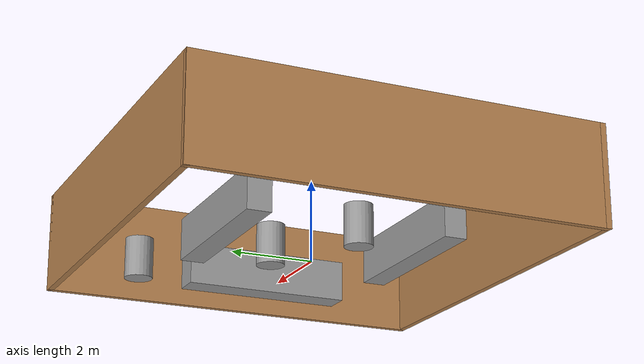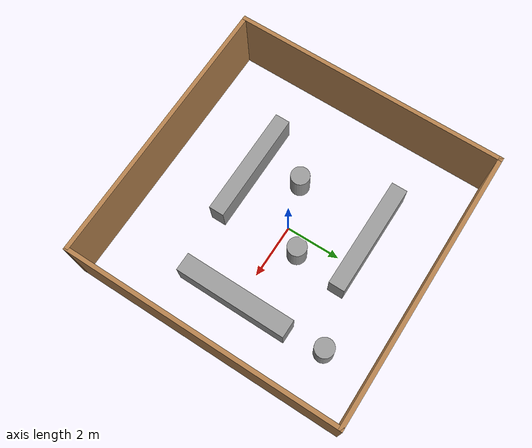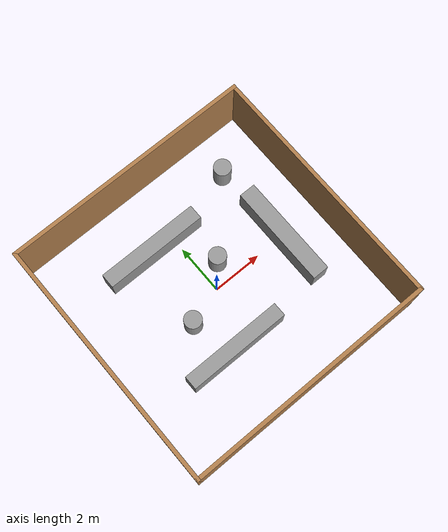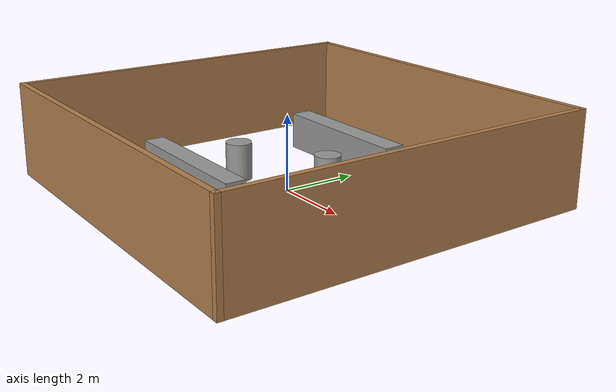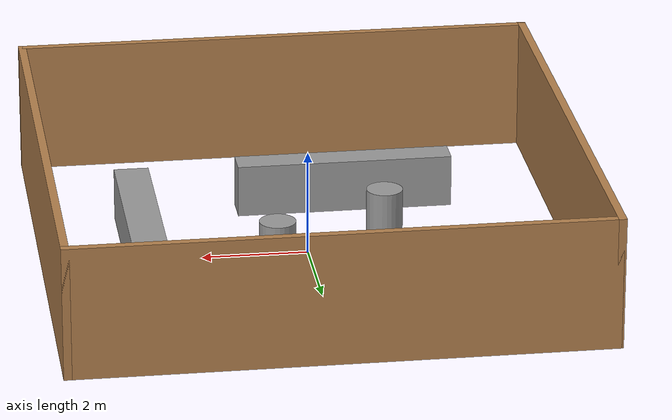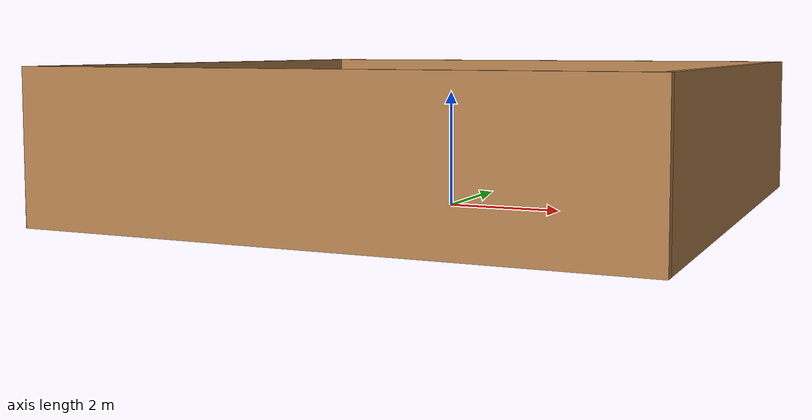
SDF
<?xml version='1.0'?>
<sdf version='1.7'>
  <model name='turtlebot3_room'>
    <link name='Wall_5'>
      <pose>0 -4.925 0 0 -0 0</pose>
      <self_collide>0</self_collide>
      <enable_wind>0</enable_wind>
      <kinematic>0</kinematic>
      <visual name='Wall_5_Visual'>
        <pose>0 0 1.25 0 -0 0</pose>
        <geometry>
          <box>
            <size>10 0.15 2.5</size>
          </box>
        </geometry>
        <material>
          <script>
            <uri>file://media/materials/scripts/gazebo.material</uri>
            <name>Gazebo/Wood</name>
          </script>
          <ambient>1 1 1 1</ambient>
          <shader type='pixel'/>
        </material>
        <meta>
          <layer>0</layer>
        </meta>
        <transparency>0</transparency>
        <cast_shadows>1</cast_shadows>
      </visual>
      <collision name='Wall_5_Collision'>
        <laser_retro>0</laser_retro>
        <max_contacts>10</max_contacts>
        <pose>0 0 1.25 0 -0 0</pose>
        <geometry>
          <box>
            <size>10 0.15 2.5</size>
          </box>
        </geometry>
        <surface>
          <friction>
            <ode>
              <mu>1</mu>
              <mu2>1</mu2>
              <fdir1>0 0 0</fdir1>
              <slip1>0</slip1>
              <slip2>0</slip2>
            </ode>
            <torsional>
              <coefficient>1</coefficient>
              <patch_radius>0</patch_radius>
              <surface_radius>0</surface_radius>
              <use_patch_radius>1</use_patch_radius>
              <ode>
                <slip>0</slip>
              </ode>
            </torsional>
          </friction>
          <bounce>
            <restitution_coefficient>0</restitution_coefficient>
            <threshold>1e+06</threshold>
          </bounce>
          <contact>
            <collide_without_contact>0</collide_without_contact>
            <collide_without_contact_bitmask>1</collide_without_contact_bitmask>
            <collide_bitmask>1</collide_bitmask>
            <ode>
              <soft_cfm>0</soft_cfm>
              <soft_erp>0.2</soft_erp>
              <kp>1e+13</kp>
              <kd>1</kd>
              <max_vel>0.01</max_vel>
              <min_depth>0</min_depth>
            </ode>
            <bullet>
              <split_impulse>1</split_impulse>
              <split_impulse_penetration_threshold>-0.01</split_impulse_penetration_threshold>
              <soft_cfm>0</soft_cfm>
              <soft_erp>0.2</soft_erp>
              <kp>1e+13</kp>
              <kd>1</kd>
            </bullet>
          </contact>
        </surface>
      </collision>
    </link>
    <link name='Wall_7'>
      <pose>-4.925 0 0 0 -0 1.5708</pose>
      <self_collide>0</self_collide>
      <enable_wind>0</enable_wind>
      <kinematic>0</kinematic>
      <visual name='Wall_7_Visual'>
        <pose>0 0 1.25 0 -0 0</pose>
        <geometry>
          <box>
            <size>10 0.15 2.5</size>
          </box>
        </geometry>
        <material>
          <script>
            <uri>file://media/materials/scripts/gazebo.material</uri>
            <name>Gazebo/Wood</name>
          </script>
          <ambient>1 1 1 1</ambient>
          <shader type='pixel'/>
        </material>
        <meta>
          <layer>0</layer>
        </meta>
        <transparency>0</transparency>
        <cast_shadows>1</cast_shadows>
      </visual>
      <collision name='Wall_7_Collision'>
        <laser_retro>0</laser_retro>
        <max_contacts>10</max_contacts>
        <pose>0 0 1.25 0 -0 0</pose>
        <geometry>
          <box>
            <size>10 0.15 2.5</size>
          </box>
        </geometry>
        <surface>
          <friction>
            <ode>
              <mu>1</mu>
              <mu2>1</mu2>
              <fdir1>0 0 0</fdir1>
              <slip1>0</slip1>
              <slip2>0</slip2>
            </ode>
            <torsional>
              <coefficient>1</coefficient>
              <patch_radius>0</patch_radius>
              <surface_radius>0</surface_radius>
              <use_patch_radius>1</use_patch_radius>
              <ode>
                <slip>0</slip>
              </ode>
            </torsional>
          </friction>
          <bounce>
            <restitution_coefficient>0</restitution_coefficient>
            <threshold>1e+06</threshold>
          </bounce>
          <contact>
            <collide_without_contact>0</collide_without_contact>
            <collide_without_contact_bitmask>1</collide_without_contact_bitmask>
            <collide_bitmask>1</collide_bitmask>
            <ode>
              <soft_cfm>0</soft_cfm>
              <soft_erp>0.2</soft_erp>
              <kp>1e+13</kp>
              <kd>1</kd>
              <max_vel>0.01</max_vel>
              <min_depth>0</min_depth>
            </ode>
            <bullet>
              <split_impulse>1</split_impulse>
              <split_impulse_penetration_threshold>-0.01</split_impulse_penetration_threshold>
              <soft_cfm>0</soft_cfm>
              <soft_erp>0.2</soft_erp>
              <kp>1e+13</kp>
              <kd>1</kd>
            </bullet>
          </contact>
        </surface>
      </collision>
    </link>
    <link name='Wall_8'>
      <pose>0 4.925 0 0 -0 0</pose>
      <self_collide>0</self_collide>
      <enable_wind>0</enable_wind>
      <kinematic>0</kinematic>
      <visual name='Wall_8_Visual'>
        <pose>0 0 1.25 0 -0 0</pose>
        <geometry>
          <box>
            <size>10 0.15 2.5</size>
          </box>
        </geometry>
        <material>
          <script>
            <uri>file://media/materials/scripts/gazebo.material</uri>
            <name>Gazebo/Wood</name>
          </script>
          <ambient>1 1 1 1</ambient>
          <shader type='pixel'/>
        </material>
        <meta>
          <layer>0</layer>
        </meta>
        <transparency>0</transparency>
        <cast_shadows>1</cast_shadows>
      </visual>
      <collision name='Wall_8_Collision'>
        <laser_retro>0</laser_retro>
        <max_contacts>10</max_contacts>
        <pose>0 0 1.25 0 -0 0</pose>
        <geometry>
          <box>
            <size>10 0.15 2.5</size>
          </box>
        </geometry>
        <surface>
          <friction>
            <ode>
              <mu>1</mu>
              <mu2>1</mu2>
              <fdir1>0 0 0</fdir1>
              <slip1>0</slip1>
              <slip2>0</slip2>
            </ode>
            <torsional>
              <coefficient>1</coefficient>
              <patch_radius>0</patch_radius>
              <surface_radius>0</surface_radius>
              <use_patch_radius>1</use_patch_radius>
              <ode>
                <slip>0</slip>
              </ode>
            </torsional>
          </friction>
          <bounce>
            <restitution_coefficient>0</restitution_coefficient>
            <threshold>1e+06</threshold>
          </bounce>
          <contact>
            <collide_without_contact>0</collide_without_contact>
            <collide_without_contact_bitmask>1</collide_without_contact_bitmask>
            <collide_bitmask>1</collide_bitmask>
            <ode>
              <soft_cfm>0</soft_cfm>
              <soft_erp>0.2</soft_erp>
              <kp>1e+13</kp>
              <kd>1</kd>
              <max_vel>0.01</max_vel>
              <min_depth>0</min_depth>
            </ode>
            <bullet>
              <split_impulse>1</split_impulse>
              <split_impulse_penetration_threshold>-0.01</split_impulse_penetration_threshold>
              <soft_cfm>0</soft_cfm>
              <soft_erp>0.2</soft_erp>
              <kp>1e+13</kp>
              <kd>1</kd>
            </bullet>
          </contact>
        </surface>
      </collision>
    </link>
    <link name='Wall_9'>
      <pose>4.925 0 0 0 0 -1.5708</pose>
      <self_collide>0</self_collide>
      <enable_wind>0</enable_wind>
      <kinematic>0</kinematic>
      <visual name='Wall_9_Visual'>
        <pose>0 0 1.25 0 -0 0</pose>
        <geometry>
          <box>
            <size>10 0.15 2.5</size>
          </box>
        </geometry>
        <material>
          <script>
            <uri>file://media/materials/scripts/gazebo.material</uri>
            <name>Gazebo/Wood</name>
          </script>
          <ambient>1 1 1 1</ambient>
          <shader type='pixel'/>
        </material>
        <meta>
          <layer>0</layer>
        </meta>
        <transparency>0</transparency>
        <cast_shadows>1</cast_shadows>
      </visual>
      <collision name='Wall_9_Collision'>
        <laser_retro>0</laser_retro>
        <max_contacts>10</max_contacts>
        <pose>0 0 1.25 0 -0 0</pose>
        <geometry>
          <box>
            <size>10 0.15 2.5</size>
          </box>
        </geometry>
        <surface>
          <friction>
            <ode>
              <mu>1</mu>
              <mu2>1</mu2>
              <fdir1>0 0 0</fdir1>
              <slip1>0</slip1>
              <slip2>0</slip2>
            </ode>
            <torsional>
              <coefficient>1</coefficient>
              <patch_radius>0</patch_radius>
              <surface_radius>0</surface_radius>
              <use_patch_radius>1</use_patch_radius>
              <ode>
                <slip>0</slip>
              </ode>
            </torsional>
          </friction>
          <bounce>
            <restitution_coefficient>0</restitution_coefficient>
            <threshold>1e+06</threshold>
          </bounce>
          <contact>
            <collide_without_contact>0</collide_without_contact>
            <collide_without_contact_bitmask>1</collide_without_contact_bitmask>
            <collide_bitmask>1</collide_bitmask>
            <ode>
              <soft_cfm>0</soft_cfm>
              <soft_erp>0.2</soft_erp>
              <kp>1e+13</kp>
              <kd>1</kd>
              <max_vel>0.01</max_vel>
              <min_depth>0</min_depth>
            </ode>
            <bullet>
              <split_impulse>1</split_impulse>
              <split_impulse_penetration_threshold>-0.01</split_impulse_penetration_threshold>
              <soft_cfm>0</soft_cfm>
              <soft_erp>0.2</soft_erp>
              <kp>1e+13</kp>
              <kd>1</kd>
            </bullet>
          </contact>
        </surface>
      </collision>
    </link>
    <link name='link_0'>
      <inertial>
        <mass>2.39397</mass>
        <inertia>
          <ixx>0.267113</ixx>
          <ixy>0</ixy>
          <ixz>0</ixz>
          <iyy>3.5729</iyy>
          <iyz>0</iyz>
          <izz>3.44101</izz>
        </inertia>
        <pose>0 0 0 0 -0 0</pose>
      </inertial>
      <pose>-0.927334 2.55567 0.5 0 -0 0</pose>
      <visual name='visual'>
        <pose>0 0 0 0 -0 0</pose>
        <geometry>
          <box>
            <size>4.11211 0.582174 1</size>
          </box>
        </geometry>
        <material>
          <lighting>1</lighting>
          <script>
            <uri>file://media/materials/scripts/gazebo.material</uri>
            <name>Gazebo/Grey</name>
          </script>
          <shader type='pixel'/>
        </material>
        <transparency>0</transparency>
        <cast_shadows>1</cast_shadows>
      </visual>
      <collision name='collision'>
        <laser_retro>0</laser_retro>
        <max_contacts>10</max_contacts>
        <pose>0 0 0 0 -0 0</pose>
        <geometry>
          <box>
            <size>4.11211 0.582174 1</size>
          </box>
        </geometry>
        <surface>
          <friction>
            <ode>
              <mu>1</mu>
              <mu2>1</mu2>
              <fdir1>0 0 0</fdir1>
              <slip1>0</slip1>
              <slip2>0</slip2>
            </ode>
            <torsional>
              <coefficient>1</coefficient>
              <patch_radius>0</patch_radius>
              <surface_radius>0</surface_radius>
              <use_patch_radius>1</use_patch_radius>
              <ode>
                <slip>0</slip>
              </ode>
            </torsional>
          </friction>
          <bounce>
            <restitution_coefficient>0</restitution_coefficient>
            <threshold>1e+06</threshold>
          </bounce>
          <contact>
            <collide_without_contact>0</collide_without_contact>
            <collide_without_contact_bitmask>1</collide_without_contact_bitmask>
            <collide_bitmask>1</collide_bitmask>
            <ode>
              <soft_cfm>0</soft_cfm>
              <soft_erp>0.2</soft_erp>
              <kp>1e+13</kp>
              <kd>1</kd>
              <max_vel>0.01</max_vel>
              <min_depth>0</min_depth>
            </ode>
            <bullet>
              <split_impulse>1</split_impulse>
              <split_impulse_penetration_threshold>-0.01</split_impulse_penetration_threshold>
              <soft_cfm>0</soft_cfm>
              <soft_erp>0.2</soft_erp>
              <kp>1e+13</kp>
              <kd>1</kd>
            </bullet>
          </contact>
        </surface>
      </collision>
    </link>
    <link name='link_0_clone'>
      <inertial>
        <mass>2.27167</mass>
        <inertia>
          <ixx>0.247079</ixx>
          <ixy>0</ixy>
          <ixz>0</ixz>
          <iyy>3.39036</iyy>
          <iyz>0</iyz>
          <izz>3.25883</izz>
        </inertia>
        <pose>0 0 0 0 -0 0</pose>
      </inertial>
      <pose>-0.975762 -2.17811 0.5 0 -0 0</pose>
      <visual name='visual'>
        <pose>0 0 0 0 -0 0</pose>
        <geometry>
          <box>
            <size>4.11211 0.552435 1</size>
          </box>
        </geometry>
        <material>
          <lighting>1</lighting>
          <script>
            <uri>file://media/materials/scripts/gazebo.material</uri>
            <name>Gazebo/Grey</name>
          </script>
          <shader type='pixel'/>
        </material>
        <transparency>0</transparency>
        <cast_shadows>1</cast_shadows>
      </visual>
      <collision name='collision'>
        <laser_retro>0</laser_retro>
        <max_contacts>10</max_contacts>
        <pose>0 0 0 0 -0 0</pose>
        <geometry>
          <box>
            <size>4.11211 0.552435 1</size>
          </box>
        </geometry>
        <surface>
          <friction>
            <ode>
              <mu>1</mu>
              <mu2>1</mu2>
              <fdir1>0 0 0</fdir1>
              <slip1>0</slip1>
              <slip2>0</slip2>
            </ode>
            <torsional>
              <coefficient>1</coefficient>
              <patch_radius>0</patch_radius>
              <surface_radius>0</surface_radius>
              <use_patch_radius>1</use_patch_radius>
              <ode>
                <slip>0</slip>
              </ode>
            </torsional>
          </friction>
          <bounce>
            <restitution_coefficient>0</restitution_coefficient>
            <threshold>1e+06</threshold>
          </bounce>
          <contact>
            <collide_without_contact>0</collide_without_contact>
            <collide_without_contact_bitmask>1</collide_without_contact_bitmask>
            <collide_bitmask>1</collide_bitmask>
            <ode>
              <soft_cfm>0</soft_cfm>
              <soft_erp>0.2</soft_erp>
              <kp>1e+13</kp>
              <kd>1</kd>
              <max_vel>0.01</max_vel>
              <min_depth>0</min_depth>
            </ode>
            <bullet>
              <split_impulse>1</split_impulse>
              <split_impulse_penetration_threshold>-0.01</split_impulse_penetration_threshold>
              <soft_cfm>0</soft_cfm>
              <soft_erp>0.2</soft_erp>
              <kp>1e+13</kp>
              <kd>1</kd>
            </bullet>
          </contact>
        </surface>
      </collision>
    </link>
    <link name='link_0_clone_0'>
      <inertial>
        <mass>2.70275</mass>
        <inertia>
          <ixx>0.322528</ixx>
          <ixy>0</ixy>
          <ixz>0</ixz>
          <iyy>4.03374</iyy>
          <iyz>0</iyz>
          <izz>3.90581</izz>
        </inertia>
        <pose>0 0 0 0 -0 0</pose>
      </inertial>
      <pose>3.10703 -0.064959 0.5 0 -0 1.56863</pose>
      <visual name='visual'>
        <pose>0 0 0 0 -0 0</pose>
        <geometry>
          <box>
            <size>4.11211 0.657265 1</size>
          </box>
        </geometry>
        <material>
          <lighting>1</lighting>
          <script>
            <uri>file://media/materials/scripts/gazebo.material</uri>
            <name>Gazebo/Grey</name>
          </script>
          <shader type='pixel'/>
        </material>
        <transparency>0</transparency>
        <cast_shadows>1</cast_shadows>
      </visual>
      <collision name='collision'>
        <laser_retro>0</laser_retro>
        <max_contacts>10</max_contacts>
        <pose>0 0 0 0 -0 0</pose>
        <geometry>
          <box>
            <size>4.11211 0.657265 1</size>
          </box>
        </geometry>
        <surface>
          <friction>
            <ode>
              <mu>1</mu>
              <mu2>1</mu2>
              <fdir1>0 0 0</fdir1>
              <slip1>0</slip1>
              <slip2>0</slip2>
            </ode>
            <torsional>
              <coefficient>1</coefficient>
              <patch_radius>0</patch_radius>
              <surface_radius>0</surface_radius>
              <use_patch_radius>1</use_patch_radius>
              <ode>
                <slip>0</slip>
              </ode>
            </torsional>
          </friction>
          <bounce>
            <restitution_coefficient>0</restitution_coefficient>
            <threshold>1e+06</threshold>
          </bounce>
          <contact>
            <collide_without_contact>0</collide_without_contact>
            <collide_without_contact_bitmask>1</collide_without_contact_bitmask>
            <collide_bitmask>1</collide_bitmask>
            <ode>
              <soft_cfm>0</soft_cfm>
              <soft_erp>0.2</soft_erp>
              <kp>1e+13</kp>
              <kd>1</kd>
              <max_vel>0.01</max_vel>
              <min_depth>0</min_depth>
            </ode>
            <bullet>
              <split_impulse>1</split_impulse>
              <split_impulse_penetration_threshold>-0.01</split_impulse_penetration_threshold>
              <soft_cfm>0</soft_cfm>
              <soft_erp>0.2</soft_erp>
              <kp>1e+13</kp>
              <kd>1</kd>
            </bullet>
          </contact>
        </surface>
      </collision>
    </link>
    <link name='link_1'>
      <inertial>
        <mass>0.471527</mass>
        <inertia>
          <ixx>0.0531897</ixx>
          <ixy>0</ixy>
          <ixz>0</ixz>
          <iyy>0.0531897</iyy>
          <iyz>0</iyz>
          <izz>0.0277916</izz>
        </inertia>
        <pose>0 0 0 0 -0 0</pose>
      </inertial>
      <pose>-1.52423 -0.495097 0.5 0 -0 0</pose>
      <visual name='visual'>
        <pose>0 0 0 0 -0 0</pose>
        <geometry>
          <cylinder>
            <radius>0.343335</radius>
            <length>1</length>
          </cylinder>
        </geometry>
        <material>
          <lighting>1</lighting>
          <script>
            <uri>file://media/materials/scripts/gazebo.material</uri>
            <name>Gazebo/Grey</name>
          </script>
          <shader type='pixel'/>
        </material>
        <transparency>0</transparency>
        <cast_shadows>1</cast_shadows>
      </visual>
      <collision name='collision'>
        <laser_retro>0</laser_retro>
        <max_contacts>10</max_contacts>
        <pose>0 0 0 0 -0 0</pose>
        <geometry>
          <cylinder>
            <radius>0.343335</radius>
            <length>1</length>
          </cylinder>
        </geometry>
        <surface>
          <friction>
            <ode>
              <mu>1</mu>
              <mu2>1</mu2>
              <fdir1>0 0 0</fdir1>
              <slip1>0</slip1>
              <slip2>0</slip2>
            </ode>
            <torsional>
              <coefficient>1</coefficient>
              <patch_radius>0</patch_radius>
              <surface_radius>0</surface_radius>
              <use_patch_radius>1</use_patch_radius>
              <ode>
                <slip>0</slip>
              </ode>
            </torsional>
          </friction>
          <bounce>
            <restitution_coefficient>0</restitution_coefficient>
            <threshold>1e+06</threshold>
          </bounce>
          <contact>
            <collide_without_contact>0</collide_without_contact>
            <collide_without_contact_bitmask>1</collide_without_contact_bitmask>
            <collide_bitmask>1</collide_bitmask>
            <ode>
              <soft_cfm>0</soft_cfm>
              <soft_erp>0.2</soft_erp>
              <kp>1e+13</kp>
              <kd>1</kd>
              <max_vel>0.01</max_vel>
              <min_depth>0</min_depth>
            </ode>
            <bullet>
              <split_impulse>1</split_impulse>
              <split_impulse_penetration_threshold>-0.01</split_impulse_penetration_threshold>
              <soft_cfm>0</soft_cfm>
              <soft_erp>0.2</soft_erp>
              <kp>1e+13</kp>
              <kd>1</kd>
            </bullet>
          </contact>
        </surface>
      </collision>
    </link>
    <link name='link_1_clone'>
      <inertial>
        <mass>0.471527</mass>
        <inertia>
          <ixx>0.0531897</ixx>
          <ixy>0</ixy>
          <ixz>0</ixz>
          <iyy>0.0531897</iyy>
          <iyz>0</iyz>
          <izz>0.0277916</izz>
        </inertia>
        <pose>0 0 0 0 -0 0</pose>
      </inertial>
      <pose>0.664577 0.762929 0.5 0 -0 0</pose>
      <visual name='visual'>
        <pose>0 0 0 0 -0 0</pose>
        <geometry>
          <cylinder>
            <radius>0.343335</radius>
            <length>1</length>
          </cylinder>
        </geometry>
        <material>
          <lighting>1</lighting>
          <script>
            <uri>file://media/materials/scripts/gazebo.material</uri>
            <name>Gazebo/Grey</name>
          </script>
          <shader type='pixel'/>
        </material>
        <transparency>0</transparency>
        <cast_shadows>1</cast_shadows>
      </visual>
      <collision name='collision'>
        <laser_retro>0</laser_retro>
        <max_contacts>10</max_contacts>
        <pose>0 0 0 0 -0 0</pose>
        <geometry>
          <cylinder>
            <radius>0.343335</radius>
            <length>1</length>
          </cylinder>
        </geometry>
        <surface>
          <friction>
            <ode>
              <mu>1</mu>
              <mu2>1</mu2>
              <fdir1>0 0 0</fdir1>
              <slip1>0</slip1>
              <slip2>0</slip2>
            </ode>
            <torsional>
              <coefficient>1</coefficient>
              <patch_radius>0</patch_radius>
              <surface_radius>0</surface_radius>
              <use_patch_radius>1</use_patch_radius>
              <ode>
                <slip>0</slip>
              </ode>
            </torsional>
          </friction>
          <bounce>
            <restitution_coefficient>0</restitution_coefficient>
            <threshold>1e+06</threshold>
          </bounce>
          <contact>
            <collide_without_contact>0</collide_without_contact>
            <collide_without_contact_bitmask>1</collide_without_contact_bitmask>
            <collide_bitmask>1</collide_bitmask>
            <ode>
              <soft_cfm>0</soft_cfm>
              <soft_erp>0.2</soft_erp>
              <kp>1e+13</kp>
              <kd>1</kd>
              <max_vel>0.01</max_vel>
              <min_depth>0</min_depth>
            </ode>
            <bullet>
              <split_impulse>1</split_impulse>
              <split_impulse_penetration_threshold>-0.01</split_impulse_penetration_threshold>
              <soft_cfm>0</soft_cfm>
              <soft_erp>0.2</soft_erp>
              <kp>1e+13</kp>
              <kd>1</kd>
            </bullet>
          </contact>
        </surface>
      </collision>
    </link>
    <link name='link_1_clone_0'>
      <inertial>
        <mass>0.471527</mass>
        <inertia>
          <ixx>0.0531897</ixx>
          <ixy>0</ixy>
          <ixz>0</ixz>
          <iyy>0.0531897</iyy>
          <iyz>0</iyz>
          <izz>0.0277916</izz>
        </inertia>
        <pose>0 0 0 0 -0 0</pose>
      </inertial>
      <pose>2.99661 3.26388 0.5 0 -0 0</pose>
      <visual name='visual'>
        <pose>0 0 0 0 -0 0</pose>
        <geometry>
          <cylinder>
            <radius>0.343335</radius>
            <length>1</length>
          </cylinder>
        </geometry>
        <material>
          <lighting>1</lighting>
          <script>
            <uri>file://media/materials/scripts/gazebo.material</uri>
            <name>Gazebo/Grey</name>
          </script>
          <shader type='pixel'/>
        </material>
        <transparency>0</transparency>
        <cast_shadows>1</cast_shadows>
      </visual>
      <collision name='collision'>
        <laser_retro>0</laser_retro>
        <max_contacts>10</max_contacts>
        <pose>0 0 0 0 -0 0</pose>
        <geometry>
          <cylinder>
            <radius>0.343335</radius>
            <length>1</length>
          </cylinder>
        </geometry>
        <surface>
          <friction>
            <ode>
              <mu>1</mu>
              <mu2>1</mu2>
              <fdir1>0 0 0</fdir1>
              <slip1>0</slip1>
              <slip2>0</slip2>
            </ode>
            <torsional>
              <coefficient>1</coefficient>
              <patch_radius>0</patch_radius>
              <surface_radius>0</surface_radius>
              <use_patch_radius>1</use_patch_radius>
              <ode>
                <slip>0</slip>
              </ode>
            </torsional>
          </friction>
          <bounce>
            <restitution_coefficient>0</restitution_coefficient>
            <threshold>1e+06</threshold>
          </bounce>
          <contact>
            <collide_without_contact>0</collide_without_contact>
            <collide_without_contact_bitmask>1</collide_without_contact_bitmask>
            <collide_bitmask>1</collide_bitmask>
            <ode>
              <soft_cfm>0</soft_cfm>
              <soft_erp>0.2</soft_erp>
              <kp>1e+13</kp>
              <kd>1</kd>
              <max_vel>0.01</max_vel>
              <min_depth>0</min_depth>
            </ode>
            <bullet>
              <split_impulse>1</split_impulse>
              <split_impulse_penetration_threshold>-0.01</split_impulse_penetration_threshold>
              <soft_cfm>0</soft_cfm>
              <soft_erp>0.2</soft_erp>
              <kp>1e+13</kp>
              <kd>1</kd>
            </bullet>
          </contact>
        </surface>
      </collision>
    </link>
    <static>1</static>
    <allow_auto_disable>1</allow_auto_disable>
  </model>
</sdf>
